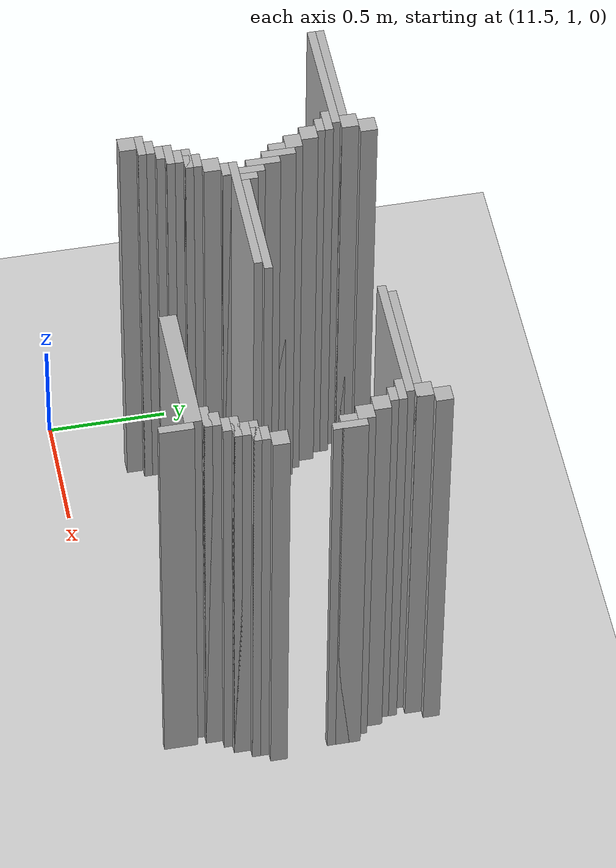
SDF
<sdf version="1.6">
 <world name="slam_world">
  <model name="ground_plane">
   <static>true</static>
   <link name="link">
    <collision name="collision">
     <geometry><plane><normal>0 0 1</normal><size>100 100</size></plane></geometry>
    </collision>
    <visual name="visual">
     <geometry><plane><normal>0 0 1</normal><size>100 100</size></plane></geometry>
     <material>
      <ambient>0.8 0.8 0.8 1</ambient>
      <diffuse>0.8 0.8 0.8 1</diffuse>
      <specular>0.8 0.8 0.8 1</specular>
     </material>
    </visual>
   </link>
  </model>
  <model name="wall_5009">
   <static>true</static>
   <pose>11.832946635730858 2.296983758700696 1.0 0 0 0</pose>
   <link name="link">
    <collision name="collision">
     <geometry><box><size>0.06960556844547564 0.06960556844547564 2.0</size></box></geometry>
    </collision>
    <visual name="visual">
     <geometry><box><size>0.06960556844547564 0.06960556844547564 2.0</size></box></geometry>
     <material><ambient>0.5 0.5 0.5 1</ambient><diffuse>0.7 0.7 0.7 1</diffuse></material>
    </visual>
   </link>
  </model>
  <model name="wall_5010">
   <static>true</static>
   <pose>13.294663573085847 2.296983758700696 1.0 0 0 0</pose>
   <link name="link">
    <collision name="collision">
     <geometry><box><size>0.06960556844547564 0.06960556844547564 2.0</size></box></geometry>
    </collision>
    <visual name="visual">
     <geometry><box><size>0.06960556844547564 0.06960556844547564 2.0</size></box></geometry>
     <material><ambient>0.5 0.5 0.5 1</ambient><diffuse>0.7 0.7 0.7 1</diffuse></material>
    </visual>
   </link>
  </model>
  <model name="wall_5026">
   <static>true</static>
   <pose>11.79814385150812 2.2273781902552203 1.0 0 0 0</pose>
   <link name="link">
    <collision name="collision">
     <geometry><box><size>0.06960556844547564 0.06960556844547564 2.0</size></box></geometry>
    </collision>
    <visual name="visual">
     <geometry><box><size>0.06960556844547564 0.06960556844547564 2.0</size></box></geometry>
     <material><ambient>0.5 0.5 0.5 1</ambient><diffuse>0.7 0.7 0.7 1</diffuse></material>
    </visual>
   </link>
  </model>
  <model name="wall_5027">
   <static>true</static>
   <pose>13.259860788863108 2.2273781902552203 1.0 0 0 0</pose>
   <link name="link">
    <collision name="collision">
     <geometry><box><size>0.06960556844547564 0.06960556844547564 2.0</size></box></geometry>
    </collision>
    <visual name="visual">
     <geometry><box><size>0.06960556844547564 0.06960556844547564 2.0</size></box></geometry>
     <material><ambient>0.5 0.5 0.5 1</ambient><diffuse>0.7 0.7 0.7 1</diffuse></material>
    </visual>
   </link>
  </model>
  <model name="wall_5041">
   <static>true</static>
   <pose>11.554524361948955 2.2099767981438516 1.0 0 0 0</pose>
   <link name="link">
    <collision name="collision">
     <geometry><box><size>0.5568445475638051 0.03480278422273782 2.0</size></box></geometry>
    </collision>
    <visual name="visual">
     <geometry><box><size>0.5568445475638051 0.03480278422273782 2.0</size></box></geometry>
     <material><ambient>0.5 0.5 0.5 1</ambient><diffuse>0.7 0.7 0.7 1</diffuse></material>
    </visual>
   </link>
  </model>
  <model name="wall_5042">
   <static>true</static>
   <pose>13.016241299303944 2.2099767981438516 1.0 0 0 0</pose>
   <link name="link">
    <collision name="collision">
     <geometry><box><size>0.5568445475638051 0.03480278422273782 2.0</size></box></geometry>
    </collision>
    <visual name="visual">
     <geometry><box><size>0.5568445475638051 0.03480278422273782 2.0</size></box></geometry>
     <material><ambient>0.5 0.5 0.5 1</ambient><diffuse>0.7 0.7 0.7 1</diffuse></material>
    </visual>
   </link>
  </model>
  <model name="wall_5053">
   <static>true</static>
   <pose>11.537122969837586 2.1751740139211138 1.0 0 0 0</pose>
   <link name="link">
    <collision name="collision">
     <geometry><box><size>0.5220417633410672 0.03480278422273782 2.0</size></box></geometry>
    </collision>
    <visual name="visual">
     <geometry><box><size>0.5220417633410672 0.03480278422273782 2.0</size></box></geometry>
     <material><ambient>0.5 0.5 0.5 1</ambient><diffuse>0.7 0.7 0.7 1</diffuse></material>
    </visual>
   </link>
  </model>
  <model name="wall_5054">
   <static>true</static>
   <pose>12.981438515081207 2.1751740139211138 1.0 0 0 0</pose>
   <link name="link">
    <collision name="collision">
     <geometry><box><size>0.5568445475638051 0.03480278422273782 2.0</size></box></geometry>
    </collision>
    <visual name="visual">
     <geometry><box><size>0.5568445475638051 0.03480278422273782 2.0</size></box></geometry>
     <material><ambient>0.5 0.5 0.5 1</ambient><diffuse>0.7 0.7 0.7 1</diffuse></material>
    </visual>
   </link>
  </model>
  <model name="wall_5070">
   <static>true</static>
   <pose>11.780742459396752 2.140371229698376 1.0 0 0 0</pose>
   <link name="link">
    <collision name="collision">
     <geometry><box><size>0.10440835266821345 0.03480278422273782 2.0</size></box></geometry>
    </collision>
    <visual name="visual">
     <geometry><box><size>0.10440835266821345 0.03480278422273782 2.0</size></box></geometry>
     <material><ambient>0.5 0.5 0.5 1</ambient><diffuse>0.7 0.7 0.7 1</diffuse></material>
    </visual>
   </link>
  </model>
  <model name="wall_5071">
   <static>true</static>
   <pose>13.24245939675174 2.140371229698376 1.0 0 0 0</pose>
   <link name="link">
    <collision name="collision">
     <geometry><box><size>0.10440835266821345 0.03480278422273782 2.0</size></box></geometry>
    </collision>
    <visual name="visual">
     <geometry><box><size>0.10440835266821345 0.03480278422273782 2.0</size></box></geometry>
     <material><ambient>0.5 0.5 0.5 1</ambient><diffuse>0.7 0.7 0.7 1</diffuse></material>
    </visual>
   </link>
  </model>
  <model name="wall_5084">
   <static>true</static>
   <pose>11.79814385150812 2.105568445475638 1.0 0 0 0</pose>
   <link name="link">
    <collision name="collision">
     <geometry><box><size>0.06960556844547564 0.03480278422273782 2.0</size></box></geometry>
    </collision>
    <visual name="visual">
     <geometry><box><size>0.06960556844547564 0.03480278422273782 2.0</size></box></geometry>
     <material><ambient>0.5 0.5 0.5 1</ambient><diffuse>0.7 0.7 0.7 1</diffuse></material>
    </visual>
   </link>
  </model>
  <model name="wall_5085">
   <static>true</static>
   <pose>13.259860788863108 2.105568445475638 1.0 0 0 0</pose>
   <link name="link">
    <collision name="collision">
     <geometry><box><size>0.06960556844547564 0.03480278422273782 2.0</size></box></geometry>
    </collision>
    <visual name="visual">
     <geometry><box><size>0.06960556844547564 0.03480278422273782 2.0</size></box></geometry>
     <material><ambient>0.5 0.5 0.5 1</ambient><diffuse>0.7 0.7 0.7 1</diffuse></material>
    </visual>
   </link>
  </model>
  <model name="wall_5098">
   <static>true</static>
   <pose>11.832946635730858 2.053364269141531 1.0 0 0 0</pose>
   <link name="link">
    <collision name="collision">
     <geometry><box><size>0.06960556844547564 0.06960556844547564 2.0</size></box></geometry>
    </collision>
    <visual name="visual">
     <geometry><box><size>0.06960556844547564 0.06960556844547564 2.0</size></box></geometry>
     <material><ambient>0.5 0.5 0.5 1</ambient><diffuse>0.7 0.7 0.7 1</diffuse></material>
    </visual>
   </link>
  </model>
  <model name="wall_5099">
   <static>true</static>
   <pose>13.294663573085847 2.053364269141531 1.0 0 0 0</pose>
   <link name="link">
    <collision name="collision">
     <geometry><box><size>0.06960556844547564 0.06960556844547564 2.0</size></box></geometry>
    </collision>
    <visual name="visual">
     <geometry><box><size>0.06960556844547564 0.06960556844547564 2.0</size></box></geometry>
     <material><ambient>0.5 0.5 0.5 1</ambient><diffuse>0.7 0.7 0.7 1</diffuse></material>
    </visual>
   </link>
  </model>
  <model name="wall_5112">
   <static>true</static>
   <pose>11.867749419953595 1.9837587006960555 1.0 0 0 0</pose>
   <link name="link">
    <collision name="collision">
     <geometry><box><size>0.06960556844547564 0.06960556844547564 2.0</size></box></geometry>
    </collision>
    <visual name="visual">
     <geometry><box><size>0.06960556844547564 0.06960556844547564 2.0</size></box></geometry>
     <material><ambient>0.5 0.5 0.5 1</ambient><diffuse>0.7 0.7 0.7 1</diffuse></material>
    </visual>
   </link>
  </model>
  <model name="wall_5113">
   <static>true</static>
   <pose>13.329466357308585 1.9837587006960555 1.0 0 0 0</pose>
   <link name="link">
    <collision name="collision">
     <geometry><box><size>0.06960556844547564 0.06960556844547564 2.0</size></box></geometry>
    </collision>
    <visual name="visual">
     <geometry><box><size>0.06960556844547564 0.06960556844547564 2.0</size></box></geometry>
     <material><ambient>0.5 0.5 0.5 1</ambient><diffuse>0.7 0.7 0.7 1</diffuse></material>
    </visual>
   </link>
  </model>
  <model name="wall_5126">
   <static>true</static>
   <pose>11.919953596287703 1.91415313225058 1.0 0 0 0</pose>
   <link name="link">
    <collision name="collision">
     <geometry><box><size>0.03480278422273782 0.13921113689095127 2.0</size></box></geometry>
    </collision>
    <visual name="visual">
     <geometry><box><size>0.03480278422273782 0.13921113689095127 2.0</size></box></geometry>
     <material><ambient>0.5 0.5 0.5 1</ambient><diffuse>0.7 0.7 0.7 1</diffuse></material>
    </visual>
   </link>
  </model>
  <model name="wall_5127">
   <static>true</static>
   <pose>13.38167053364269 1.91415313225058 1.0 0 0 0</pose>
   <link name="link">
    <collision name="collision">
     <geometry><box><size>0.03480278422273782 0.13921113689095127 2.0</size></box></geometry>
    </collision>
    <visual name="visual">
     <geometry><box><size>0.03480278422273782 0.13921113689095127 2.0</size></box></geometry>
     <material><ambient>0.5 0.5 0.5 1</ambient><diffuse>0.7 0.7 0.7 1</diffuse></material>
    </visual>
   </link>
  </model>
  <model name="wall_5135">
   <static>true</static>
   <pose>11.902552204176333 1.91415313225058 1.0 0 0 0</pose>
   <link name="link">
    <collision name="collision">
     <geometry><box><size>0.06960556844547564 0.06960556844547564 2.0</size></box></geometry>
    </collision>
    <visual name="visual">
     <geometry><box><size>0.06960556844547564 0.06960556844547564 2.0</size></box></geometry>
     <material><ambient>0.5 0.5 0.5 1</ambient><diffuse>0.7 0.7 0.7 1</diffuse></material>
    </visual>
   </link>
  </model>
  <model name="wall_5136">
   <static>true</static>
   <pose>13.364269141531322 1.91415313225058 1.0 0 0 0</pose>
   <link name="link">
    <collision name="collision">
     <geometry><box><size>0.06960556844547564 0.06960556844547564 2.0</size></box></geometry>
    </collision>
    <visual name="visual">
     <geometry><box><size>0.06960556844547564 0.06960556844547564 2.0</size></box></geometry>
     <material><ambient>0.5 0.5 0.5 1</ambient><diffuse>0.7 0.7 0.7 1</diffuse></material>
    </visual>
   </link>
  </model>
  <model name="wall_5148">
   <static>true</static>
   <pose>11.95475638051044 1.8445475638051043 1.0 0 0 0</pose>
   <link name="link">
    <collision name="collision">
     <geometry><box><size>0.03480278422273782 0.13921113689095127 2.0</size></box></geometry>
    </collision>
    <visual name="visual">
     <geometry><box><size>0.03480278422273782 0.13921113689095127 2.0</size></box></geometry>
     <material><ambient>0.5 0.5 0.5 1</ambient><diffuse>0.7 0.7 0.7 1</diffuse></material>
    </visual>
   </link>
  </model>
  <model name="wall_5167">
   <static>true</static>
   <pose>11.989559164733178 1.75754060324826 1.0 0 0 0</pose>
   <link name="link">
    <collision name="collision">
     <geometry><box><size>0.03480278422273782 0.17401392111368907 2.0</size></box></geometry>
    </collision>
    <visual name="visual">
     <geometry><box><size>0.03480278422273782 0.17401392111368907 2.0</size></box></geometry>
     <material><ambient>0.5 0.5 0.5 1</ambient><diffuse>0.7 0.7 0.7 1</diffuse></material>
    </visual>
   </link>
  </model>
  <model name="wall_5181">
   <static>true</static>
   <pose>12.024361948955915 1.75754060324826 1.0 0 0 0</pose>
   <link name="link">
    <collision name="collision">
     <geometry><box><size>0.03480278422273782 0.10440835266821345 2.0</size></box></geometry>
    </collision>
    <visual name="visual">
     <geometry><box><size>0.03480278422273782 0.10440835266821345 2.0</size></box></geometry>
     <material><ambient>0.5 0.5 0.5 1</ambient><diffuse>0.7 0.7 0.7 1</diffuse></material>
    </visual>
   </link>
  </model>
  <model name="wall_5192">
   <static>true</static>
   <pose>12.28538283062645 1.75754060324826 1.0 0 0 0</pose>
   <link name="link">
    <collision name="collision">
     <geometry><box><size>0.4872389791183295 0.03480278422273782 2.0</size></box></geometry>
    </collision>
    <visual name="visual">
     <geometry><box><size>0.4872389791183295 0.03480278422273782 2.0</size></box></geometry>
     <material><ambient>0.5 0.5 0.5 1</ambient><diffuse>0.7 0.7 0.7 1</diffuse></material>
    </visual>
   </link>
  </model>
  <model name="wall_5202">
   <static>true</static>
   <pose>12.215777262180975 1.722737819025522 1.0 0 0 0</pose>
   <link name="link">
    <collision name="collision">
     <geometry><box><size>0.5568445475638051 0.03480278422273782 2.0</size></box></geometry>
    </collision>
    <visual name="visual">
     <geometry><box><size>0.5568445475638051 0.03480278422273782 2.0</size></box></geometry>
     <material><ambient>0.5 0.5 0.5 1</ambient><diffuse>0.7 0.7 0.7 1</diffuse></material>
    </visual>
   </link>
  </model>
  <model name="wall_5217">
   <static>true</static>
   <pose>11.97215777262181 1.6879350348027842 1.0 0 0 0</pose>
   <link name="link">
    <collision name="collision">
     <geometry><box><size>0.06960556844547564 0.03480278422273782 2.0</size></box></geometry>
    </collision>
    <visual name="visual">
     <geometry><box><size>0.06960556844547564 0.03480278422273782 2.0</size></box></geometry>
     <material><ambient>0.5 0.5 0.5 1</ambient><diffuse>0.7 0.7 0.7 1</diffuse></material>
    </visual>
   </link>
  </model>
  <model name="wall_5232">
   <static>true</static>
   <pose>11.937354988399072 1.6357308584686774 1.0 0 0 0</pose>
   <link name="link">
    <collision name="collision">
     <geometry><box><size>0.06960556844547564 0.06960556844547564 2.0</size></box></geometry>
    </collision>
    <visual name="visual">
     <geometry><box><size>0.06960556844547564 0.06960556844547564 2.0</size></box></geometry>
     <material><ambient>0.5 0.5 0.5 1</ambient><diffuse>0.7 0.7 0.7 1</diffuse></material>
    </visual>
   </link>
  </model>
  <model name="wall_5233">
   <static>true</static>
   <pose>13.39907192575406 1.6357308584686774 1.0 0 0 0</pose>
   <link name="link">
    <collision name="collision">
     <geometry><box><size>0.06960556844547564 0.06960556844547564 2.0</size></box></geometry>
    </collision>
    <visual name="visual">
     <geometry><box><size>0.06960556844547564 0.06960556844547564 2.0</size></box></geometry>
     <material><ambient>0.5 0.5 0.5 1</ambient><diffuse>0.7 0.7 0.7 1</diffuse></material>
    </visual>
   </link>
  </model>
  <model name="wall_5247">
   <static>true</static>
   <pose>11.902552204176333 1.5661252900232019 1.0 0 0 0</pose>
   <link name="link">
    <collision name="collision">
     <geometry><box><size>0.06960556844547564 0.06960556844547564 2.0</size></box></geometry>
    </collision>
    <visual name="visual">
     <geometry><box><size>0.06960556844547564 0.06960556844547564 2.0</size></box></geometry>
     <material><ambient>0.5 0.5 0.5 1</ambient><diffuse>0.7 0.7 0.7 1</diffuse></material>
    </visual>
   </link>
  </model>
  <model name="wall_5248">
   <static>true</static>
   <pose>13.364269141531322 1.5661252900232019 1.0 0 0 0</pose>
   <link name="link">
    <collision name="collision">
     <geometry><box><size>0.06960556844547564 0.06960556844547564 2.0</size></box></geometry>
    </collision>
    <visual name="visual">
     <geometry><box><size>0.06960556844547564 0.06960556844547564 2.0</size></box></geometry>
     <material><ambient>0.5 0.5 0.5 1</ambient><diffuse>0.7 0.7 0.7 1</diffuse></material>
    </visual>
   </link>
  </model>
  <model name="wall_5262">
   <static>true</static>
   <pose>11.885150812064964 1.548723897911833 1.0 0 0 0</pose>
   <link name="link">
    <collision name="collision">
     <geometry><box><size>0.10440835266821345 0.03480278422273782 2.0</size></box></geometry>
    </collision>
    <visual name="visual">
     <geometry><box><size>0.10440835266821345 0.03480278422273782 2.0</size></box></geometry>
     <material><ambient>0.5 0.5 0.5 1</ambient><diffuse>0.7 0.7 0.7 1</diffuse></material>
    </visual>
   </link>
  </model>
  <model name="wall_5263">
   <static>true</static>
   <pose>13.346867749419953 1.548723897911833 1.0 0 0 0</pose>
   <link name="link">
    <collision name="collision">
     <geometry><box><size>0.10440835266821345 0.03480278422273782 2.0</size></box></geometry>
    </collision>
    <visual name="visual">
     <geometry><box><size>0.10440835266821345 0.03480278422273782 2.0</size></box></geometry>
     <material><ambient>0.5 0.5 0.5 1</ambient><diffuse>0.7 0.7 0.7 1</diffuse></material>
    </visual>
   </link>
  </model>
  <model name="wall_5274">
   <static>true</static>
   <pose>11.867749419953595 1.4965197215777262 1.0 0 0 0</pose>
   <link name="link">
    <collision name="collision">
     <geometry><box><size>0.06960556844547564 0.06960556844547564 2.0</size></box></geometry>
    </collision>
    <visual name="visual">
     <geometry><box><size>0.06960556844547564 0.06960556844547564 2.0</size></box></geometry>
     <material><ambient>0.5 0.5 0.5 1</ambient><diffuse>0.7 0.7 0.7 1</diffuse></material>
    </visual>
   </link>
  </model>
  <model name="wall_5275">
   <static>true</static>
   <pose>13.329466357308585 1.4965197215777262 1.0 0 0 0</pose>
   <link name="link">
    <collision name="collision">
     <geometry><box><size>0.06960556844547564 0.06960556844547564 2.0</size></box></geometry>
    </collision>
    <visual name="visual">
     <geometry><box><size>0.06960556844547564 0.06960556844547564 2.0</size></box></geometry>
     <material><ambient>0.5 0.5 0.5 1</ambient><diffuse>0.7 0.7 0.7 1</diffuse></material>
    </visual>
   </link>
  </model>
  <model name="wall_5288">
   <static>true</static>
   <pose>11.850348027842227 1.4791183294663572 1.0 0 0 0</pose>
   <link name="link">
    <collision name="collision">
     <geometry><box><size>0.10440835266821345 0.03480278422273782 2.0</size></box></geometry>
    </collision>
    <visual name="visual">
     <geometry><box><size>0.10440835266821345 0.03480278422273782 2.0</size></box></geometry>
     <material><ambient>0.5 0.5 0.5 1</ambient><diffuse>0.7 0.7 0.7 1</diffuse></material>
    </visual>
   </link>
  </model>
  <model name="wall_5289">
   <static>true</static>
   <pose>13.312064965197216 1.4791183294663572 1.0 0 0 0</pose>
   <link name="link">
    <collision name="collision">
     <geometry><box><size>0.10440835266821345 0.03480278422273782 2.0</size></box></geometry>
    </collision>
    <visual name="visual">
     <geometry><box><size>0.10440835266821345 0.03480278422273782 2.0</size></box></geometry>
     <material><ambient>0.5 0.5 0.5 1</ambient><diffuse>0.7 0.7 0.7 1</diffuse></material>
    </visual>
   </link>
  </model>
  <model name="wall_5296">
   <static>true</static>
   <pose>11.832946635730858 1.4443155452436194 1.0 0 0 0</pose>
   <link name="link">
    <collision name="collision">
     <geometry><box><size>0.06960556844547564 0.03480278422273782 2.0</size></box></geometry>
    </collision>
    <visual name="visual">
     <geometry><box><size>0.06960556844547564 0.03480278422273782 2.0</size></box></geometry>
     <material><ambient>0.5 0.5 0.5 1</ambient><diffuse>0.7 0.7 0.7 1</diffuse></material>
    </visual>
   </link>
  </model>
  <model name="wall_5297">
   <static>true</static>
   <pose>13.294663573085847 1.4443155452436194 1.0 0 0 0</pose>
   <link name="link">
    <collision name="collision">
     <geometry><box><size>0.06960556844547564 0.03480278422273782 2.0</size></box></geometry>
    </collision>
    <visual name="visual">
     <geometry><box><size>0.06960556844547564 0.03480278422273782 2.0</size></box></geometry>
     <material><ambient>0.5 0.5 0.5 1</ambient><diffuse>0.7 0.7 0.7 1</diffuse></material>
    </visual>
   </link>
  </model>
  <model name="wall_5310">
   <static>true</static>
   <pose>11.79814385150812 1.3921113689095126 1.0 0 0 0</pose>
   <link name="link">
    <collision name="collision">
     <geometry><box><size>0.06960556844547564 0.06960556844547564 2.0</size></box></geometry>
    </collision>
    <visual name="visual">
     <geometry><box><size>0.06960556844547564 0.06960556844547564 2.0</size></box></geometry>
     <material><ambient>0.5 0.5 0.5 1</ambient><diffuse>0.7 0.7 0.7 1</diffuse></material>
    </visual>
   </link>
  </model>
  <model name="wall_5311">
   <static>true</static>
   <pose>13.259860788863108 1.3921113689095126 1.0 0 0 0</pose>
   <link name="link">
    <collision name="collision">
     <geometry><box><size>0.06960556844547564 0.06960556844547564 2.0</size></box></geometry>
    </collision>
    <visual name="visual">
     <geometry><box><size>0.06960556844547564 0.06960556844547564 2.0</size></box></geometry>
     <material><ambient>0.5 0.5 0.5 1</ambient><diffuse>0.7 0.7 0.7 1</diffuse></material>
    </visual>
   </link>
  </model>
  <model name="wall_5320">
   <static>true</static>
   <pose>11.780742459396752 1.3747099767981439 1.0 0 0 0</pose>
   <link name="link">
    <collision name="collision">
     <geometry><box><size>0.10440835266821345 0.03480278422273782 2.0</size></box></geometry>
    </collision>
    <visual name="visual">
     <geometry><box><size>0.10440835266821345 0.03480278422273782 2.0</size></box></geometry>
     <material><ambient>0.5 0.5 0.5 1</ambient><diffuse>0.7 0.7 0.7 1</diffuse></material>
    </visual>
   </link>
  </model>
  <model name="wall_5321">
   <static>true</static>
   <pose>13.24245939675174 1.3747099767981439 1.0 0 0 0</pose>
   <link name="link">
    <collision name="collision">
     <geometry><box><size>0.10440835266821345 0.03480278422273782 2.0</size></box></geometry>
    </collision>
    <visual name="visual">
     <geometry><box><size>0.10440835266821345 0.03480278422273782 2.0</size></box></geometry>
     <material><ambient>0.5 0.5 0.5 1</ambient><diffuse>0.7 0.7 0.7 1</diffuse></material>
    </visual>
   </link>
  </model>
  <model name="wall_5334">
   <static>true</static>
   <pose>11.763341067285383 1.322505800464037 1.0 0 0 0</pose>
   <link name="link">
    <collision name="collision">
     <geometry><box><size>0.06960556844547564 0.06960556844547564 2.0</size></box></geometry>
    </collision>
    <visual name="visual">
     <geometry><box><size>0.06960556844547564 0.06960556844547564 2.0</size></box></geometry>
     <material><ambient>0.5 0.5 0.5 1</ambient><diffuse>0.7 0.7 0.7 1</diffuse></material>
    </visual>
   </link>
  </model>
  <model name="wall_5335">
   <static>true</static>
   <pose>12.981438515081207 1.322505800464037 1.0 0 0 0</pose>
   <link name="link">
    <collision name="collision">
     <geometry><box><size>0.5568445475638051 0.06960556844547564 2.0</size></box></geometry>
    </collision>
    <visual name="visual">
     <geometry><box><size>0.5568445475638051 0.06960556844547564 2.0</size></box></geometry>
     <material><ambient>0.5 0.5 0.5 1</ambient><diffuse>0.7 0.7 0.7 1</diffuse></material>
    </visual>
   </link>
  </model>
  <model name="wall_5343">
   <static>true</static>
   <pose>13.277262180974477 1.2529002320185614 1.0 0 0 0</pose>
   <link name="link">
    <collision name="collision">
     <geometry><box><size>0.03480278422273782 0.13921113689095127 2.0</size></box></geometry>
    </collision>
    <visual name="visual">
     <geometry><box><size>0.03480278422273782 0.13921113689095127 2.0</size></box></geometry>
     <material><ambient>0.5 0.5 0.5 1</ambient><diffuse>0.7 0.7 0.7 1</diffuse></material>
    </visual>
   </link>
  </model>
 </world>
</sdf>
